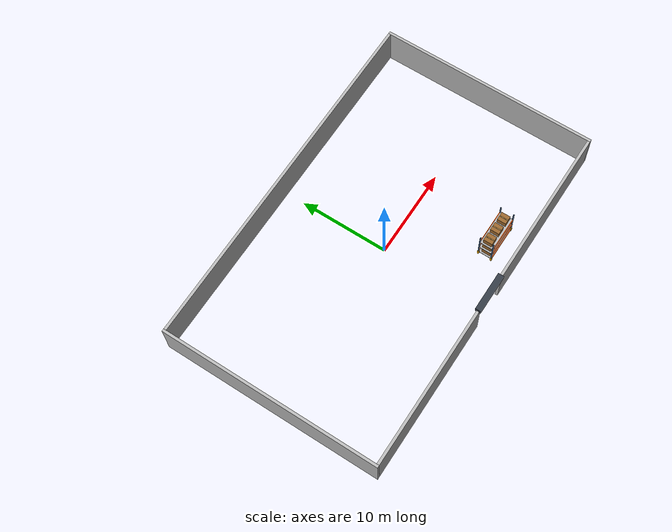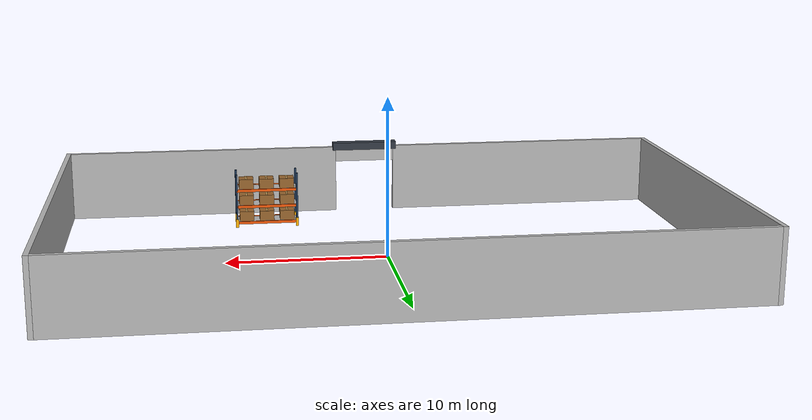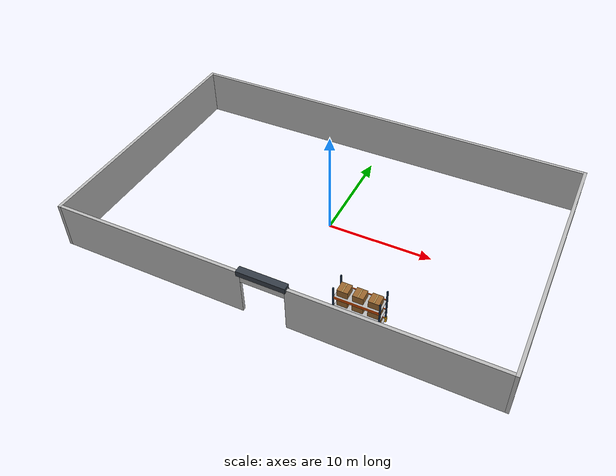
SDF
<sdf version="1.9">
 <world name="factory">
  <model name="perimeter_one_entrance">
   <static>true</static>
   <link name="body">
    <visual name="west_visual">
     <pose>-20.15 0 2.25 0 0 0</pose>
     <geometry><mesh><uri>model://factory_scene_assets/meshes/wall_005.dae</uri></mesh></geometry>
    </visual>
    <collision name="west_collision">
     <pose>-20.15 0 2.25 0 0 0</pose>
     <geometry><box><size>0.3 24.6 4.5</size></box></geometry>
    </collision>
    <visual name="east_visual">
     <pose>20.15 0 2.25 0 0 0</pose>
     <geometry><mesh><uri>model://factory_scene_assets/meshes/wall_005.dae</uri></mesh></geometry>
    </visual>
    <collision name="east_collision">
     <pose>20.15 0 2.25 0 0 0</pose>
     <geometry><box><size>0.3 24.6 4.5</size></box></geometry>
    </collision>
    <visual name="north_visual">
     <pose>0 12.15 2.25 0 0 0</pose>
     <geometry><mesh><uri>model://factory_scene_assets/meshes/wall_006.dae</uri></mesh></geometry>
    </visual>
    <collision name="north_collision">
     <pose>0 12.15 2.25 0 0 0</pose>
     <geometry><box><size>40 0.3 4.5</size></box></geometry>
    </collision>
    <visual name="south_left_visual">
     <pose>-11 -12.15 2.25 0 0 0</pose>
     <geometry><mesh><uri>model://factory_scene_assets/meshes/wall_007.dae</uri></mesh></geometry>
    </visual>
    <collision name="south_left_collision">
     <pose>-11 -12.15 2.25 0 0 0</pose>
     <geometry><box><size>18 0.3 4.5</size></box></geometry>
    </collision>
    <visual name="south_right_visual">
     <pose>11 -12.15 2.25 0 0 0</pose>
     <geometry><mesh><uri>model://factory_scene_assets/meshes/wall_007.dae</uri></mesh></geometry>
    </visual>
    <collision name="south_right_collision">
     <pose>11 -12.15 2.25 0 0 0</pose>
     <geometry><box><size>18 0.3 4.5</size></box></geometry>
    </collision>
    <visual name="gate_header_visual">
     <pose>0 -12.15 4 0 0 0</pose>
     <geometry><mesh><uri>model://factory_scene_assets/meshes/wall_008.dae</uri></mesh></geometry>
    </visual>
    <collision name="gate_header_collision">
     <pose>0 -12.15 4 0 0 0</pose>
     <geometry><box><size>4 0.3 1</size></box></geometry>
    </collision>
    <visual name="raised_gate_housing_visual">
     <pose>0 -12.15 4.55 0 0 0</pose>
     <geometry><box><size>4.4 0.65 0.5</size></box></geometry>
     <material><ambient>.2 .23 .27 1</ambient><diffuse>.2 .23 .27 1</diffuse></material>
    </visual>
    <collision name="raised_gate_housing_collision">
     <pose>0 -12.15 4.55 0 0 0</pose>
     <geometry><box><size>4.4 0.65 0.5</size></box></geometry>
    </collision>
   </link>
  </model>
  <model name="rack_1_0_0">
   <static>true</static>
   <pose>7 -9 0 0 0 0</pose>
   <link name="body">
    <visual name="post0_visual">
     <pose>-2 -0.75 1.8 0 0 0</pose>
     <geometry><box><size>0.12 0.12 3.6</size></box></geometry>
     <material><ambient>.12 .22 .34 1</ambient><diffuse>.12 .22 .34 1</diffuse></material>
    </visual>
    <collision name="post0_collision">
     <pose>-2 -0.75 1.8 0 0 0</pose>
     <geometry><box><size>0.12 0.12 3.6</size></box></geometry>
    </collision>
    <visual name="guard0_visual">
     <pose>-2 -0.75 0.275 0 0 0</pose>
     <geometry><box><size>0.18 0.18 0.55</size></box></geometry>
     <material><ambient>1 .7 .02 1</ambient><diffuse>1 .7 .02 1</diffuse></material>
    </visual>
    <collision name="guard0_collision">
     <pose>-2 -0.75 0.275 0 0 0</pose>
     <geometry><box><size>0.18 0.18 0.55</size></box></geometry>
    </collision>
    <visual name="post1_visual">
     <pose>2 -0.75 1.8 0 0 0</pose>
     <geometry><box><size>0.12 0.12 3.6</size></box></geometry>
     <material><ambient>.12 .22 .34 1</ambient><diffuse>.12 .22 .34 1</diffuse></material>
    </visual>
    <collision name="post1_collision">
     <pose>2 -0.75 1.8 0 0 0</pose>
     <geometry><box><size>0.12 0.12 3.6</size></box></geometry>
    </collision>
    <visual name="guard1_visual">
     <pose>2 -0.75 0.275 0 0 0</pose>
     <geometry><box><size>0.18 0.18 0.55</size></box></geometry>
     <material><ambient>1 .7 .02 1</ambient><diffuse>1 .7 .02 1</diffuse></material>
    </visual>
    <collision name="guard1_collision">
     <pose>2 -0.75 0.275 0 0 0</pose>
     <geometry><box><size>0.18 0.18 0.55</size></box></geometry>
    </collision>
    <visual name="post2_visual">
     <pose>-2 0.75 1.8 0 0 0</pose>
     <geometry><box><size>0.12 0.12 3.6</size></box></geometry>
     <material><ambient>.12 .22 .34 1</ambient><diffuse>.12 .22 .34 1</diffuse></material>
    </visual>
    <collision name="post2_collision">
     <pose>-2 0.75 1.8 0 0 0</pose>
     <geometry><box><size>0.12 0.12 3.6</size></box></geometry>
    </collision>
    <visual name="guard2_visual">
     <pose>-2 0.75 0.275 0 0 0</pose>
     <geometry><box><size>0.18 0.18 0.55</size></box></geometry>
     <material><ambient>1 .7 .02 1</ambient><diffuse>1 .7 .02 1</diffuse></material>
    </visual>
    <collision name="guard2_collision">
     <pose>-2 0.75 0.275 0 0 0</pose>
     <geometry><box><size>0.18 0.18 0.55</size></box></geometry>
    </collision>
    <visual name="post3_visual">
     <pose>2 0.75 1.8 0 0 0</pose>
     <geometry><box><size>0.12 0.12 3.6</size></box></geometry>
     <material><ambient>.12 .22 .34 1</ambient><diffuse>.12 .22 .34 1</diffuse></material>
    </visual>
    <collision name="post3_collision">
     <pose>2 0.75 1.8 0 0 0</pose>
     <geometry><box><size>0.12 0.12 3.6</size></box></geometry>
    </collision>
    <visual name="guard3_visual">
     <pose>2 0.75 0.275 0 0 0</pose>
     <geometry><box><size>0.18 0.18 0.55</size></box></geometry>
     <material><ambient>1 .7 .02 1</ambient><diffuse>1 .7 .02 1</diffuse></material>
    </visual>
    <collision name="guard3_collision">
     <pose>2 0.75 0.275 0 0 0</pose>
     <geometry><box><size>0.18 0.18 0.55</size></box></geometry>
    </collision>
    <visual name="shelf0_visual">
     <pose>0 0 0.3 0 0 0</pose>
     <geometry><mesh><uri>model://factory_scene_assets/meshes/wood_010.dae</uri></mesh></geometry>
    </visual>
    <collision name="shelf0_collision">
     <pose>0 0 0.3 0 0 0</pose>
     <geometry><box><size>4 1.5 0.08</size></box></geometry>
    </collision>
    <visual name="beam0_0_visual">
     <pose>0 -0.77 0.3 0 0 0</pose>
     <geometry><box><size>4 0.08 0.18</size></box></geometry>
     <material><ambient>.95 .35 .035 1</ambient><diffuse>.95 .35 .035 1</diffuse></material>
    </visual>
    <collision name="beam0_0_collision">
     <pose>0 -0.77 0.3 0 0 0</pose>
     <geometry><box><size>4 0.08 0.18</size></box></geometry>
    </collision>
    <visual name="beam0_1_visual">
     <pose>0 0.77 0.3 0 0 0</pose>
     <geometry><box><size>4 0.08 0.18</size></box></geometry>
     <material><ambient>.95 .35 .035 1</ambient><diffuse>.95 .35 .035 1</diffuse></material>
    </visual>
    <collision name="beam0_1_collision">
     <pose>0 0.77 0.3 0 0 0</pose>
     <geometry><box><size>4 0.08 0.18</size></box></geometry>
    </collision>
    <visual name="cargo0_0_visual">
     <pose>-1.35 0 0.665 0 0 0</pose>
     <geometry><box><size>0.95 1 0.65</size></box></geometry>
     <material><ambient>.60 .40 .18 1</ambient><diffuse>.60 .40 .18 1</diffuse></material>
    </visual>
    <collision name="cargo0_0_collision">
     <pose>-1.35 0 0.665 0 0 0</pose>
     <geometry><box><size>0.95 1 0.65</size></box></geometry>
    </collision>
    <visual name="cargo0_0_tape_visual">
     <pose>-1.35 0 0.993 0 0 0</pose>
     <geometry><box><size>0.09 1 0.006</size></box></geometry>
     <material><ambient>.85 .69 .4 1</ambient><diffuse>.85 .69 .4 1</diffuse></material>
    </visual>
    <visual name="cargo0_1_visual">
     <pose>0 0 0.665 0 0 0</pose>
     <geometry><box><size>0.95 1 0.65</size></box></geometry>
     <material><ambient>.60 .40 .18 1</ambient><diffuse>.60 .40 .18 1</diffuse></material>
    </visual>
    <collision name="cargo0_1_collision">
     <pose>0 0 0.665 0 0 0</pose>
     <geometry><box><size>0.95 1 0.65</size></box></geometry>
    </collision>
    <visual name="cargo0_1_tape_visual">
     <pose>0 0 0.993 0 0 0</pose>
     <geometry><box><size>0.09 1 0.006</size></box></geometry>
     <material><ambient>.85 .69 .4 1</ambient><diffuse>.85 .69 .4 1</diffuse></material>
    </visual>
    <visual name="cargo0_2_visual">
     <pose>1.35 0 0.665 0 0 0</pose>
     <geometry><box><size>0.95 1 0.65</size></box></geometry>
     <material><ambient>.60 .40 .18 1</ambient><diffuse>.60 .40 .18 1</diffuse></material>
    </visual>
    <collision name="cargo0_2_collision">
     <pose>1.35 0 0.665 0 0 0</pose>
     <geometry><box><size>0.95 1 0.65</size></box></geometry>
    </collision>
    <visual name="cargo0_2_tape_visual">
     <pose>1.35 0 0.993 0 0 0</pose>
     <geometry><box><size>0.09 1 0.006</size></box></geometry>
     <material><ambient>.85 .69 .4 1</ambient><diffuse>.85 .69 .4 1</diffuse></material>
    </visual>
    <visual name="shelf1_visual">
     <pose>0 0 1.4 0 0 0</pose>
     <geometry><mesh><uri>model://factory_scene_assets/meshes/wood_010.dae</uri></mesh></geometry>
    </visual>
    <collision name="shelf1_collision">
     <pose>0 0 1.4 0 0 0</pose>
     <geometry><box><size>4 1.5 0.08</size></box></geometry>
    </collision>
    <visual name="beam1_0_visual">
     <pose>0 -0.77 1.4 0 0 0</pose>
     <geometry><box><size>4 0.08 0.18</size></box></geometry>
     <material><ambient>.95 .35 .035 1</ambient><diffuse>.95 .35 .035 1</diffuse></material>
    </visual>
    <collision name="beam1_0_collision">
     <pose>0 -0.77 1.4 0 0 0</pose>
     <geometry><box><size>4 0.08 0.18</size></box></geometry>
    </collision>
    <visual name="beam1_1_visual">
     <pose>0 0.77 1.4 0 0 0</pose>
     <geometry><box><size>4 0.08 0.18</size></box></geometry>
     <material><ambient>.95 .35 .035 1</ambient><diffuse>.95 .35 .035 1</diffuse></material>
    </visual>
    <collision name="beam1_1_collision">
     <pose>0 0.77 1.4 0 0 0</pose>
     <geometry><box><size>4 0.08 0.18</size></box></geometry>
    </collision>
    <visual name="cargo1_0_visual">
     <pose>-1.35 0 1.765 0 0 0</pose>
     <geometry><box><size>0.95 1 0.65</size></box></geometry>
     <material><ambient>.60 .40 .18 1</ambient><diffuse>.60 .40 .18 1</diffuse></material>
    </visual>
    <collision name="cargo1_0_collision">
     <pose>-1.35 0 1.765 0 0 0</pose>
     <geometry><box><size>0.95 1 0.65</size></box></geometry>
    </collision>
    <visual name="cargo1_0_tape_visual">
     <pose>-1.35 0 2.093 0 0 0</pose>
     <geometry><box><size>0.09 1 0.006</size></box></geometry>
     <material><ambient>.85 .69 .4 1</ambient><diffuse>.85 .69 .4 1</diffuse></material>
    </visual>
    <visual name="cargo1_1_visual">
     <pose>0 0 1.765 0 0 0</pose>
     <geometry><box><size>0.95 1 0.65</size></box></geometry>
     <material><ambient>.60 .40 .18 1</ambient><diffuse>.60 .40 .18 1</diffuse></material>
    </visual>
    <collision name="cargo1_1_collision">
     <pose>0 0 1.765 0 0 0</pose>
     <geometry><box><size>0.95 1 0.65</size></box></geometry>
    </collision>
    <visual name="cargo1_1_tape_visual">
     <pose>0 0 2.093 0 0 0</pose>
     <geometry><box><size>0.09 1 0.006</size></box></geometry>
     <material><ambient>.85 .69 .4 1</ambient><diffuse>.85 .69 .4 1</diffuse></material>
    </visual>
    <visual name="cargo1_2_visual">
     <pose>1.35 0 1.765 0 0 0</pose>
     <geometry><box><size>0.95 1 0.65</size></box></geometry>
     <material><ambient>.60 .40 .18 1</ambient><diffuse>.60 .40 .18 1</diffuse></material>
    </visual>
    <collision name="cargo1_2_collision">
     <pose>1.35 0 1.765 0 0 0</pose>
     <geometry><box><size>0.95 1 0.65</size></box></geometry>
    </collision>
    <visual name="cargo1_2_tape_visual">
     <pose>1.35 0 2.093 0 0 0</pose>
     <geometry><box><size>0.09 1 0.006</size></box></geometry>
     <material><ambient>.85 .69 .4 1</ambient><diffuse>.85 .69 .4 1</diffuse></material>
    </visual>
    <visual name="shelf2_visual">
     <pose>0 0 2.5 0 0 0</pose>
     <geometry><mesh><uri>model://factory_scene_assets/meshes/wood_010.dae</uri></mesh></geometry>
    </visual>
    <collision name="shelf2_collision">
     <pose>0 0 2.5 0 0 0</pose>
     <geometry><box><size>4 1.5 0.08</size></box></geometry>
    </collision>
    <visual name="beam2_0_visual">
     <pose>0 -0.77 2.5 0 0 0</pose>
     <geometry><box><size>4 0.08 0.18</size></box></geometry>
     <material><ambient>.95 .35 .035 1</ambient><diffuse>.95 .35 .035 1</diffuse></material>
    </visual>
    <collision name="beam2_0_collision">
     <pose>0 -0.77 2.5 0 0 0</pose>
     <geometry><box><size>4 0.08 0.18</size></box></geometry>
    </collision>
    <visual name="beam2_1_visual">
     <pose>0 0.77 2.5 0 0 0</pose>
     <geometry><box><size>4 0.08 0.18</size></box></geometry>
     <material><ambient>.95 .35 .035 1</ambient><diffuse>.95 .35 .035 1</diffuse></material>
    </visual>
    <collision name="beam2_1_collision">
     <pose>0 0.77 2.5 0 0 0</pose>
     <geometry><box><size>4 0.08 0.18</size></box></geometry>
    </collision>
    <visual name="cargo2_0_visual">
     <pose>-1.35 0 2.865 0 0 0</pose>
     <geometry><box><size>0.95 1 0.65</size></box></geometry>
     <material><ambient>.60 .40 .18 1</ambient><diffuse>.60 .40 .18 1</diffuse></material>
    </visual>
    <collision name="cargo2_0_collision">
     <pose>-1.35 0 2.865 0 0 0</pose>
     <geometry><box><size>0.95 1 0.65</size></box></geometry>
    </collision>
    <visual name="cargo2_0_tape_visual">
     <pose>-1.35 0 3.193 0 0 0</pose>
     <geometry><box><size>0.09 1 0.006</size></box></geometry>
     <material><ambient>.85 .69 .4 1</ambient><diffuse>.85 .69 .4 1</diffuse></material>
    </visual>
    <visual name="cargo2_1_visual">
     <pose>0 0 2.865 0 0 0</pose>
     <geometry><box><size>0.95 1 0.65</size></box></geometry>
     <material><ambient>.60 .40 .18 1</ambient><diffuse>.60 .40 .18 1</diffuse></material>
    </visual>
    <collision name="cargo2_1_collision">
     <pose>0 0 2.865 0 0 0</pose>
     <geometry><box><size>0.95 1 0.65</size></box></geometry>
    </collision>
    <visual name="cargo2_1_tape_visual">
     <pose>0 0 3.193 0 0 0</pose>
     <geometry><box><size>0.09 1 0.006</size></box></geometry>
     <material><ambient>.85 .69 .4 1</ambient><diffuse>.85 .69 .4 1</diffuse></material>
    </visual>
    <visual name="cargo2_2_visual">
     <pose>1.35 0 2.865 0 0 0</pose>
     <geometry><box><size>0.95 1 0.65</size></box></geometry>
     <material><ambient>.60 .40 .18 1</ambient><diffuse>.60 .40 .18 1</diffuse></material>
    </visual>
    <collision name="cargo2_2_collision">
     <pose>1.35 0 2.865 0 0 0</pose>
     <geometry><box><size>0.95 1 0.65</size></box></geometry>
    </collision>
    <visual name="cargo2_2_tape_visual">
     <pose>1.35 0 3.193 0 0 0</pose>
     <geometry><box><size>0.09 1 0.006</size></box></geometry>
     <material><ambient>.85 .69 .4 1</ambient><diffuse>.85 .69 .4 1</diffuse></material>
    </visual>
   </link>
  </model>
 </world>
</sdf>
